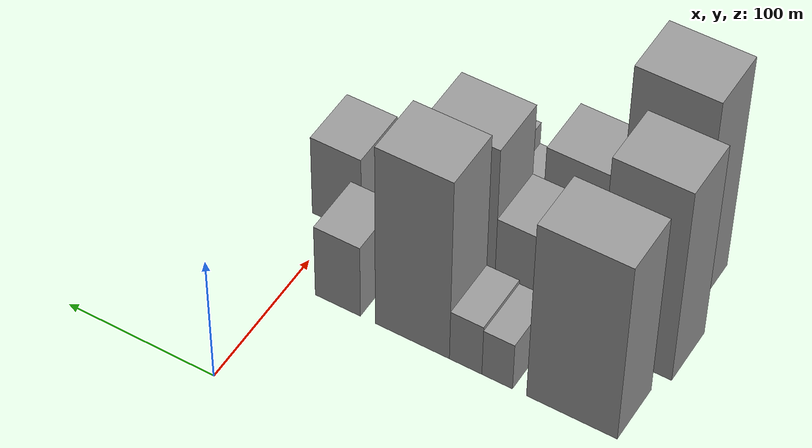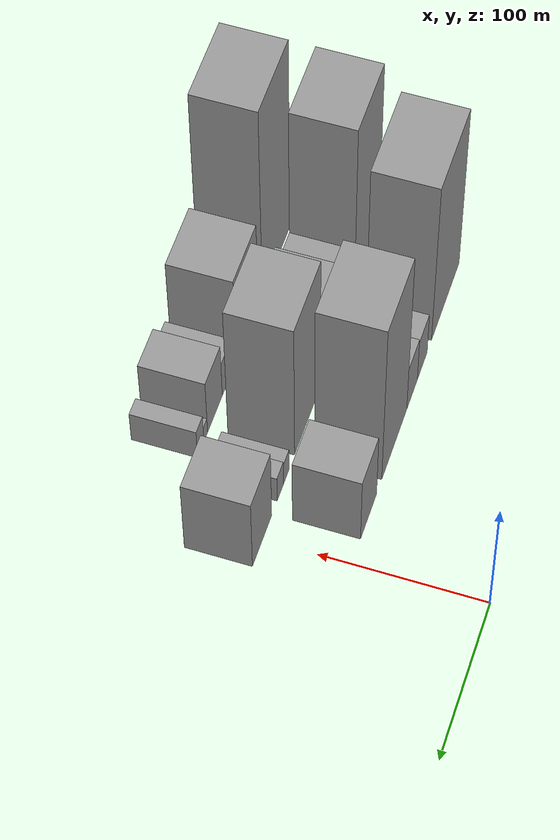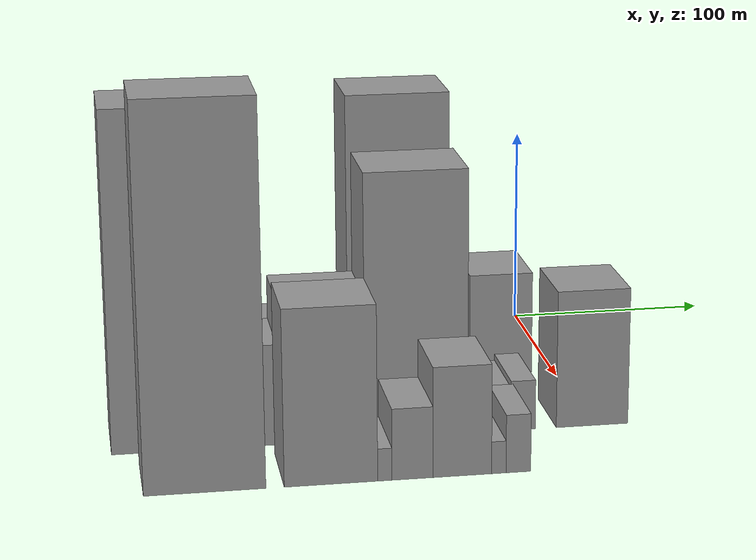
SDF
<sdf version="1.6">
 <world name="default">
  <model name="building_18">
   <static>1</static>
   <pose>100.0000 -186.0432 0 0.000000 0.000000 0.000000</pose>
   <link name="link">
    <pose>0 0 73.50 0 0 0</pose>
    <collision name="collision"><geometry><box><size>40.0000 57.8186 147.0000</size></box></geometry></collision>
    <visual name="visual">
     <cast_shadows>0</cast_shadows>
     <geometry><box><size>40.0000 57.8186 147.0000</size></box></geometry>
     <material>
      <script>
       <uri>model://grey_wall/materials/scripts</uri>
       <uri>model://grey_wall/materials/textures</uri>
       <name>vrc/grey_wall</name>
      </script>
     </material>
    </visual>
   </link>
  </model>
  <model name="building_19">
   <static>1</static>
   <pose>100.0000 -138.1578 0 0.000000 0.000000 0.000000</pose>
   <link name="link">
    <pose>0 0 19.50 0 0 0</pose>
    <collision name="collision"><geometry><box><size>40.0000 19.9521 39.0000</size></box></geometry></collision>
    <visual name="visual">
     <cast_shadows>0</cast_shadows>
     <geometry><box><size>40.0000 19.9521 39.0000</size></box></geometry>
     <material>
      <script>
       <uri>model://grey_wall/materials/scripts</uri>
       <uri>model://grey_wall/materials/textures</uri>
       <name>vrc/grey_wall</name>
      </script>
     </material>
    </visual>
   </link>
  </model>
  <model name="building_20">
   <static>1</static>
   <pose>100.0000 -117.5496 0 0.000000 0.000000 0.000000</pose>
   <link name="link">
    <pose>0 0 21.00 0 0 0</pose>
    <collision name="collision"><geometry><box><size>40.0000 21.2644 42.0000</size></box></geometry></collision>
    <visual name="visual">
     <cast_shadows>0</cast_shadows>
     <geometry><box><size>40.0000 21.2644 42.0000</size></box></geometry>
     <material>
      <script>
       <uri>model://grey_wall/materials/scripts</uri>
       <uri>model://grey_wall/materials/textures</uri>
       <name>vrc/grey_wall</name>
      </script>
     </material>
    </visual>
   </link>
  </model>
  <model name="building_21">
   <static>1</static>
   <pose>100.0000 -82.2609 0 0.000000 0.000000 0.000000</pose>
   <link name="link">
    <pose>0 0 75.00 0 0 0</pose>
    <collision name="collision"><geometry><box><size>40.0000 49.3131 150.0000</size></box></geometry></collision>
    <visual name="visual">
     <cast_shadows>0</cast_shadows>
     <geometry><box><size>40.0000 49.3131 150.0000</size></box></geometry>
     <material>
      <script>
       <uri>model://grey_wall/materials/scripts</uri>
       <uri>model://grey_wall/materials/textures</uri>
       <name>vrc/grey_wall</name>
      </script>
     </material>
    </visual>
   </link>
  </model>
  <model name="building_22">
   <static>1</static>
   <pose>100.0000 -32.2844 0 0.000000 0.000000 0.000000</pose>
   <link name="link">
    <pose>0 0 30.00 0 0 0</pose>
    <collision name="collision"><geometry><box><size>40.0000 30.6397 60.0000</size></box></geometry></collision>
    <visual name="visual">
     <cast_shadows>0</cast_shadows>
     <geometry><box><size>40.0000 30.6397 60.0000</size></box></geometry>
     <material>
      <script>
       <uri>model://grey_wall/materials/scripts</uri>
       <uri>model://grey_wall/materials/textures</uri>
       <name>vrc/grey_wall</name>
      </script>
     </material>
    </visual>
   </link>
  </model>
  <model name="building_66">
   <static>1</static>
   <pose>152.0000 -197.1437 0 0.000000 0.000000 0.000000</pose>
   <link name="link">
    <pose>0 0 79.50 0 0 0</pose>
    <collision name="collision"><geometry><box><size>40.0000 48.9924 159.0000</size></box></geometry></collision>
    <visual name="visual">
     <cast_shadows>0</cast_shadows>
     <geometry><box><size>40.0000 48.9924 159.0000</size></box></geometry>
     <material>
      <script>
       <uri>model://grey_wall/materials/scripts</uri>
       <uri>model://grey_wall/materials/textures</uri>
       <name>vrc/grey_wall</name>
      </script>
     </material>
    </visual>
   </link>
  </model>
  <model name="building_67">
   <static>1</static>
   <pose>152.0000 -159.3872 0 0.000000 0.000000 0.000000</pose>
   <link name="link">
    <pose>0 0 24.00 0 0 0</pose>
    <collision name="collision"><geometry><box><size>40.0000 26.5207 48.0000</size></box></geometry></collision>
    <visual name="visual">
     <cast_shadows>0</cast_shadows>
     <geometry><box><size>40.0000 26.5207 48.0000</size></box></geometry>
     <material>
      <script>
       <uri>model://grey_wall/materials/scripts</uri>
       <uri>model://grey_wall/materials/textures</uri>
       <name>vrc/grey_wall</name>
      </script>
     </material>
    </visual>
   </link>
  </model>
  <model name="building_68">
   <static>1</static>
   <pose>152.0000 -126.0976 0 0.000000 0.000000 0.000000</pose>
   <link name="link">
    <pose>0 0 34.50 0 0 0</pose>
    <collision name="collision"><geometry><box><size>40.0000 40.0585 69.0000</size></box></geometry></collision>
    <visual name="visual">
     <cast_shadows>0</cast_shadows>
     <geometry><box><size>40.0000 40.0585 69.0000</size></box></geometry>
     <material>
      <script>
       <uri>model://grey_wall/materials/scripts</uri>
       <uri>model://grey_wall/materials/textures</uri>
       <name>vrc/grey_wall</name>
      </script>
     </material>
    </visual>
   </link>
  </model>
  <model name="building_69">
   <static>1</static>
   <pose>152.0000 -82.0551 0 0.000000 0.000000 0.000000</pose>
   <link name="link">
    <pose>0 0 63.00 0 0 0</pose>
    <collision name="collision"><geometry><box><size>40.0000 48.0266 126.0000</size></box></geometry></collision>
    <visual name="visual">
     <cast_shadows>0</cast_shadows>
     <geometry><box><size>40.0000 48.0266 126.0000</size></box></geometry>
     <material>
      <script>
       <uri>model://grey_wall/materials/scripts</uri>
       <uri>model://grey_wall/materials/textures</uri>
       <name>vrc/grey_wall</name>
      </script>
     </material>
    </visual>
   </link>
  </model>
  <model name="building_70">
   <static>1</static>
   <pose>152.0000 -42.9014 0 0.000000 0.000000 0.000000</pose>
   <link name="link">
    <pose>0 0 10.50 0 0 0</pose>
    <collision name="collision"><geometry><box><size>40.0000 10.2807 21.0000</size></box></geometry></collision>
    <visual name="visual">
     <cast_shadows>0</cast_shadows>
     <geometry><box><size>40.0000 10.2807 21.0000</size></box></geometry>
     <material>
      <script>
       <uri>model://grey_wall/materials/scripts</uri>
       <uri>model://grey_wall/materials/textures</uri>
       <name>vrc/grey_wall</name>
      </script>
     </material>
    </visual>
   </link>
  </model>
  <model name="building_71">
   <static>1</static>
   <pose>152.0000 -31.9671 0 0.000000 0.000000 0.000000</pose>
   <link name="link">
    <pose>0 0 12.00 0 0 0</pose>
    <collision name="collision"><geometry><box><size>40.0000 11.5878 24.0000</size></box></geometry></collision>
    <visual name="visual">
     <cast_shadows>0</cast_shadows>
     <geometry><box><size>40.0000 11.5878 24.0000</size></box></geometry>
     <material>
      <script>
       <uri>model://grey_wall/materials/scripts</uri>
       <uri>model://grey_wall/materials/textures</uri>
       <name>vrc/grey_wall</name>
      </script>
     </material>
    </visual>
   </link>
  </model>
  <model name="building_72">
   <static>1</static>
   <pose>152.0000 0.9617 0 0.000000 0.000000 0.000000</pose>
   <link name="link">
    <pose>0 0 33.00 0 0 0</pose>
    <collision name="collision"><geometry><box><size>40.0000 34.2699 66.0000</size></box></geometry></collision>
    <visual name="visual">
     <cast_shadows>0</cast_shadows>
     <geometry><box><size>40.0000 34.2699 66.0000</size></box></geometry>
     <material>
      <script>
       <uri>model://grey_wall/materials/scripts</uri>
       <uri>model://grey_wall/materials/textures</uri>
       <name>vrc/grey_wall</name>
      </script>
     </material>
    </visual>
   </link>
  </model>
  <model name="building_122">
   <static>1</static>
   <pose>204.0000 -183.3602 0 0.000000 0.000000 0.000000</pose>
   <link name="link">
    <pose>0 0 87.00 0 0 0</pose>
    <collision name="collision"><geometry><box><size>40.0000 52.8860 174.0000</size></box></geometry></collision>
    <visual name="visual">
     <cast_shadows>0</cast_shadows>
     <geometry><box><size>40.0000 52.8860 174.0000</size></box></geometry>
     <material>
      <script>
       <uri>model://grey_wall/materials/scripts</uri>
       <uri>model://grey_wall/materials/textures</uri>
       <name>vrc/grey_wall</name>
      </script>
     </material>
    </visual>
   </link>
  </model>
  <model name="building_123">
   <static>1</static>
   <pose>204.0000 -128.3855 0 0.000000 0.000000 0.000000</pose>
   <link name="link">
    <pose>0 0 40.50 0 0 0</pose>
    <collision name="collision"><geometry><box><size>40.0000 41.0634 81.0000</size></box></geometry></collision>
    <visual name="visual">
     <cast_shadows>0</cast_shadows>
     <geometry><box><size>40.0000 41.0634 81.0000</size></box></geometry>
     <material>
      <script>
       <uri>model://grey_wall/materials/scripts</uri>
       <uri>model://grey_wall/materials/textures</uri>
       <name>vrc/grey_wall</name>
      </script>
     </material>
    </visual>
   </link>
  </model>
  <model name="building_124">
   <static>1</static>
   <pose>204.0000 -104.6912 0 0.000000 0.000000 0.000000</pose>
   <link name="link">
    <pose>0 0 7.50 0 0 0</pose>
    <collision name="collision"><geometry><box><size>40.0000 6.3252 15.0000</size></box></geometry></collision>
    <visual name="visual">
     <cast_shadows>0</cast_shadows>
     <geometry><box><size>40.0000 6.3252 15.0000</size></box></geometry>
     <material>
      <script>
       <uri>model://grey_wall/materials/scripts</uri>
       <uri>model://grey_wall/materials/textures</uri>
       <name>vrc/grey_wall</name>
      </script>
     </material>
    </visual>
   </link>
  </model>
  <model name="building_125">
   <static>1</static>
   <pose>204.0000 -92.4181 0 0.000000 0.000000 0.000000</pose>
   <link name="link">
    <pose>0 0 16.50 0 0 0</pose>
    <collision name="collision"><geometry><box><size>40.0000 18.2209 33.0000</size></box></geometry></collision>
    <visual name="visual">
     <cast_shadows>0</cast_shadows>
     <geometry><box><size>40.0000 18.2209 33.0000</size></box></geometry>
     <material>
      <script>
       <uri>model://grey_wall/materials/scripts</uri>
       <uri>model://grey_wall/materials/textures</uri>
       <name>vrc/grey_wall</name>
      </script>
     </material>
    </visual>
   </link>
  </model>
  <model name="building_126">
   <static>1</static>
   <pose>204.0000 -70.1956 0 0.000000 0.000000 0.000000</pose>
   <link name="link">
    <pose>0 0 25.50 0 0 0</pose>
    <collision name="collision"><geometry><box><size>40.0000 26.2242 51.0000</size></box></geometry></collision>
    <visual name="visual">
     <cast_shadows>0</cast_shadows>
     <geometry><box><size>40.0000 26.2242 51.0000</size></box></geometry>
     <material>
      <script>
       <uri>model://grey_wall/materials/scripts</uri>
       <uri>model://grey_wall/materials/textures</uri>
       <name>vrc/grey_wall</name>
      </script>
     </material>
    </visual>
   </link>
  </model>
  <model name="building_127">
   <static>1</static>
   <pose>204.0000 -53.8236 0 0.000000 0.000000 0.000000</pose>
   <link name="link">
    <pose>0 0 7.50 0 0 0</pose>
    <collision name="collision"><geometry><box><size>40.0000 6.5197 15.0000</size></box></geometry></collision>
    <visual name="visual">
     <cast_shadows>0</cast_shadows>
     <geometry><box><size>40.0000 6.5197 15.0000</size></box></geometry>
     <material>
      <script>
       <uri>model://grey_wall/materials/scripts</uri>
       <uri>model://grey_wall/materials/textures</uri>
       <name>vrc/grey_wall</name>
      </script>
     </material>
    </visual>
   </link>
  </model>
  <model name="building_128">
   <static>1</static>
   <pose>204.0000 -45.0045 0 0.000000 0.000000 0.000000</pose>
   <link name="link">
    <pose>0 0 13.50 0 0 0</pose>
    <collision name="collision"><geometry><box><size>40.0000 11.1185 27.0000</size></box></geometry></collision>
    <visual name="visual">
     <cast_shadows>0</cast_shadows>
     <geometry><box><size>40.0000 11.1185 27.0000</size></box></geometry>
     <material>
      <script>
       <uri>model://grey_wall/materials/scripts</uri>
       <uri>model://grey_wall/materials/textures</uri>
       <name>vrc/grey_wall</name>
      </script>
     </material>
    </visual>
   </link>
  </model>
 </world>
</sdf>
